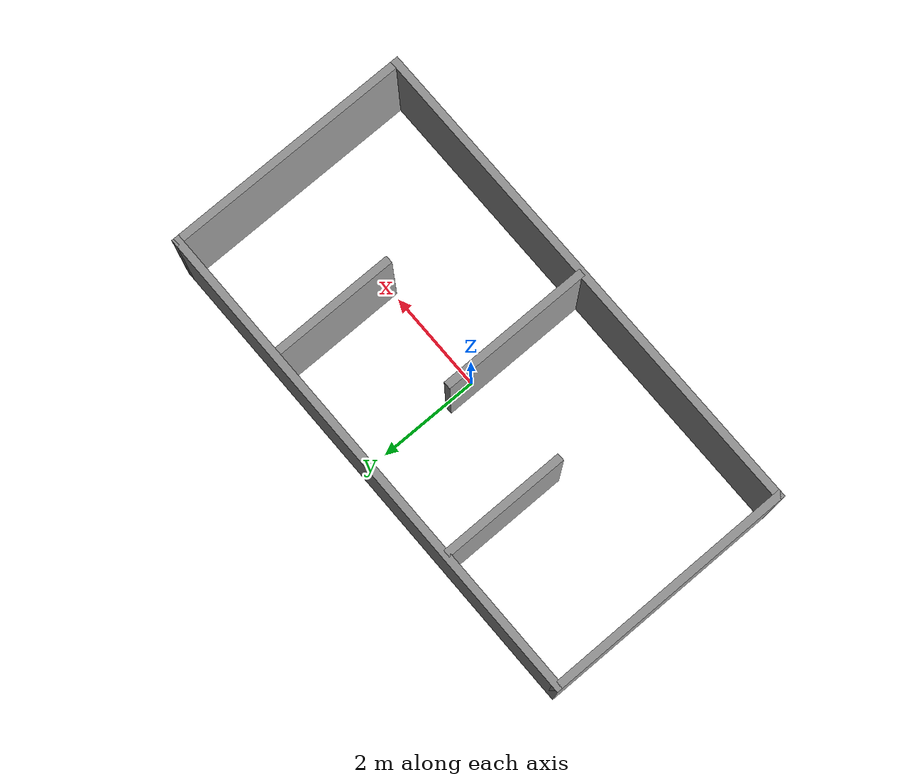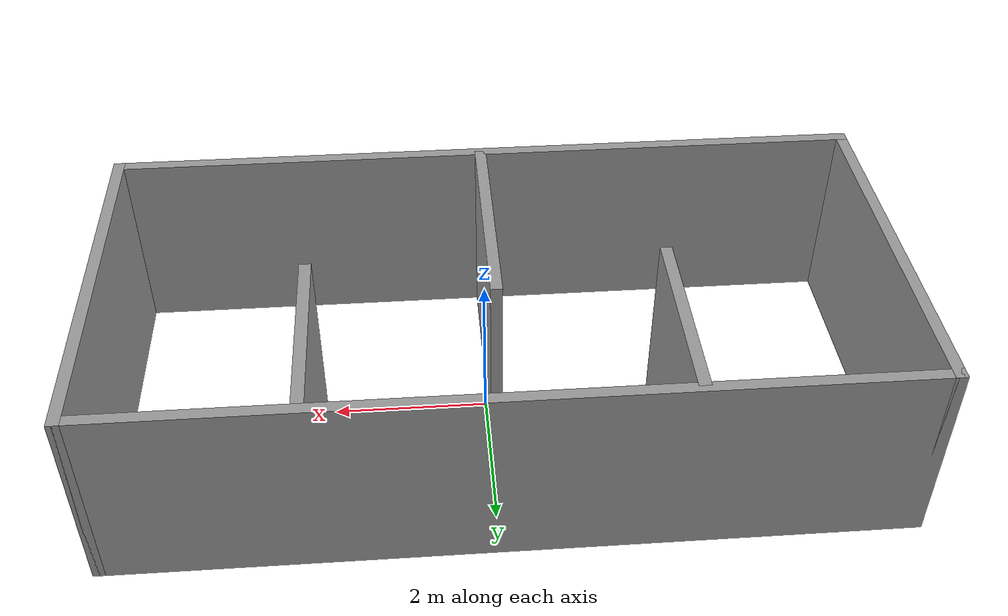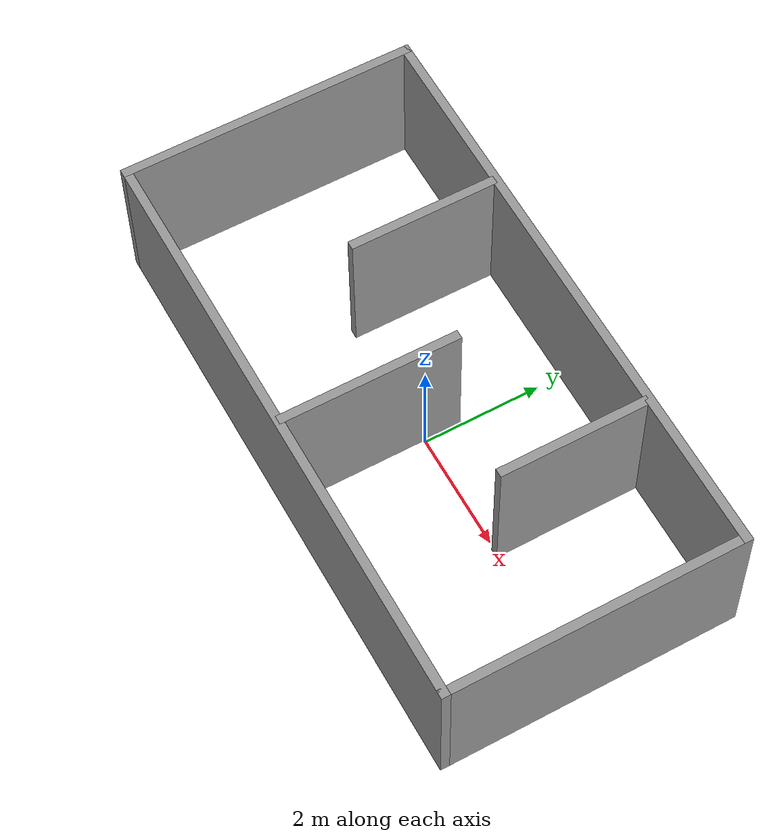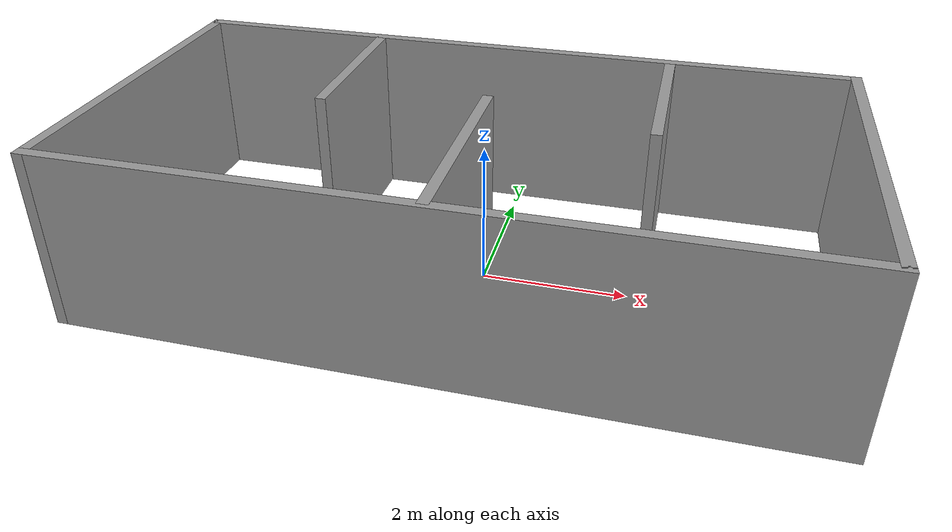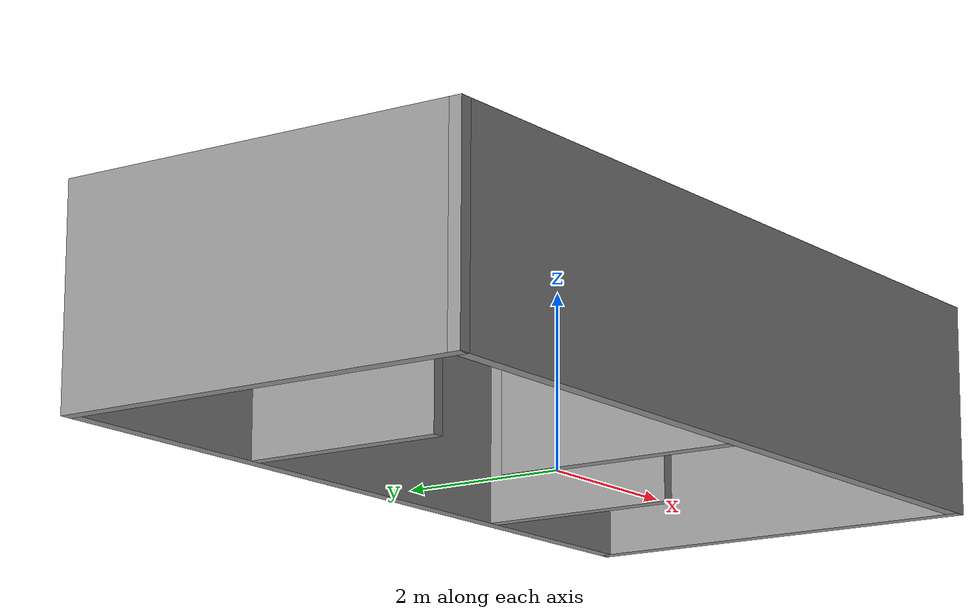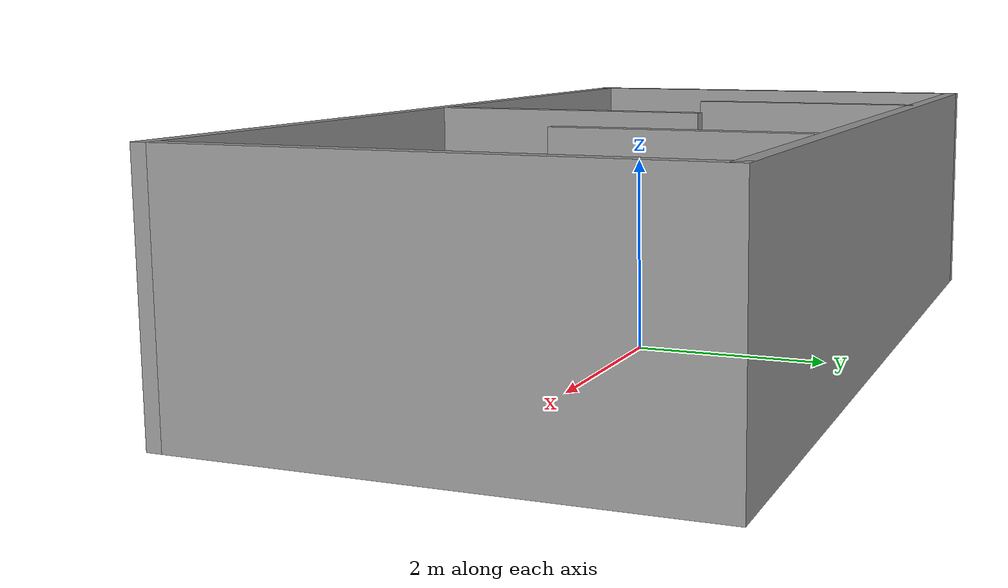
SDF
<?xml version='1.0'?>
<sdf version='1.7'>
  <model name='CG-GZ-Scene-001'>
    <pose>-0.175237 0.055836 0 0 -0 0</pose>
    <link name='Wall_20'>
      <collision name='Wall_20_Collision'>
        <geometry>
          <box>
            <size>5 0.15 2.5</size>
          </box>
        </geometry>
        <pose>0 0 1.25 0 -0 0</pose>
      </collision>
      <visual name='Wall_20_Visual'>
        <pose>0 0 1.25 0 -0 0</pose>
        <geometry>
          <box>
            <size>5 0.15 2.5</size>
          </box>
        </geometry>
        <material>
          <script>
            <uri>file://media/materials/scripts/gazebo.material</uri>
            <name>Gazebo/Grey</name>
          </script>
          <ambient>1 1 1 1</ambient>
        </material>
        <meta>
          <layer>0</layer>
        </meta>
      </visual>
      <pose>4.925 0 0 0 -0 -1.5708</pose>
    </link>
    <link name='Wall_21'>
      <collision name='Wall_21_Collision'>
        <geometry>
          <box>
            <size>10 0.15 2.5</size>
          </box>
        </geometry>
        <pose>0 0 1.25 0 -0 0</pose>
      </collision>
      <visual name='Wall_21_Visual'>
        <pose>0 0 1.25 0 -0 0</pose>
        <geometry>
          <box>
            <size>10 0.15 2.5</size>
          </box>
        </geometry>
        <material>
          <script>
            <uri>file://media/materials/scripts/gazebo.material</uri>
            <name>Gazebo/Grey</name>
          </script>
          <ambient>1 1 1 1</ambient>
        </material>
        <meta>
          <layer>0</layer>
        </meta>
      </visual>
      <pose>-0 -2.425 0 0 -0 3.14159</pose>
    </link>
    <link name='Wall_22'>
      <collision name='Wall_22_Collision'>
        <geometry>
          <box>
            <size>5 0.15 2.5</size>
          </box>
        </geometry>
        <pose>0 0 1.25 0 -0 0</pose>
      </collision>
      <visual name='Wall_22_Visual'>
        <pose>0 0 1.25 0 -0 0</pose>
        <geometry>
          <box>
            <size>5 0.15 2.5</size>
          </box>
        </geometry>
        <material>
          <script>
            <uri>file://media/materials/scripts/gazebo.material</uri>
            <name>Gazebo/Grey</name>
          </script>
          <ambient>1 1 1 1</ambient>
        </material>
        <meta>
          <layer>0</layer>
        </meta>
      </visual>
      <pose>-4.925 0 0 0 -0 1.5708</pose>
    </link>
    <link name='Wall_29'>
      <collision name='Wall_29_Collision'>
        <geometry>
          <box>
            <size>2.5 0.15 2.5</size>
          </box>
        </geometry>
        <pose>0 0 1.25 0 -0 0</pose>
      </collision>
      <visual name='Wall_29_Visual'>
        <pose>0 0 1.25 0 -0 0</pose>
        <geometry>
          <box>
            <size>2.5 0.15 2.5</size>
          </box>
        </geometry>
        <material>
          <script>
            <uri>file://media/materials/scripts/gazebo.material</uri>
            <name>Gazebo/Grey</name>
          </script>
          <ambient>1 1 1 1</ambient>
        </material>
        <meta>
          <layer>0</layer>
        </meta>
      </visual>
      <pose>-2.08185 1.15537 0 0 -0 -1.5708</pose>
    </link>
    <link name='Wall_3'>
      <collision name='Wall_3_Collision'>
        <geometry>
          <box>
            <size>10 0.15 2.5</size>
          </box>
        </geometry>
        <pose>0 0 1.25 0 -0 0</pose>
      </collision>
      <visual name='Wall_3_Visual'>
        <pose>0 0 1.25 0 -0 0</pose>
        <geometry>
          <box>
            <size>10 0.15 2.5</size>
          </box>
        </geometry>
        <material>
          <script>
            <uri>file://media/materials/scripts/gazebo.material</uri>
            <name>Gazebo/Grey</name>
          </script>
          <ambient>1 1 1 1</ambient>
        </material>
        <meta>
          <layer>0</layer>
        </meta>
      </visual>
      <pose>-0 2.425 0 0 -0 0</pose>
    </link>
    <link name='Wall_31'>
      <collision name='Wall_31_Collision'>
        <geometry>
          <box>
            <size>2.5 0.15 2.5</size>
          </box>
        </geometry>
        <pose>0 0 1.25 0 -0 0</pose>
      </collision>
      <visual name='Wall_31_Visual'>
        <pose>0 0 1.25 0 -0 0</pose>
        <geometry>
          <box>
            <size>2.5 0.15 2.5</size>
          </box>
        </geometry>
        <material>
          <script>
            <uri>file://media/materials/scripts/gazebo.material</uri>
            <name>Gazebo/Grey</name>
          </script>
          <ambient>1 1 1 1</ambient>
        </material>
        <meta>
          <layer>0</layer>
        </meta>
      </visual>
      <pose>2.35923 1.15537 0 0 -0 -1.5708</pose>
    </link>
    <link name='Wall_33'>
      <collision name='Wall_33_Collision'>
        <geometry>
          <box>
            <size>3 0.15 2.5</size>
          </box>
        </geometry>
        <pose>0 0 1.25 0 -0 0</pose>
      </collision>
      <visual name='Wall_33_Visual'>
        <pose>0 0 1.25 0 -0 0</pose>
        <geometry>
          <box>
            <size>3 0.15 2.5</size>
          </box>
        </geometry>
        <material>
          <script>
            <uri>file://media/materials/scripts/gazebo.material</uri>
            <name>Gazebo/Grey</name>
          </script>
          <ambient>1 1 1 1</ambient>
        </material>
        <meta>
          <layer>0</layer>
        </meta>
      </visual>
      <pose>0.0693 -0.930821 0 0 -0 -1.5708</pose>
    </link>
    <static>1</static>
  </model>
</sdf>
